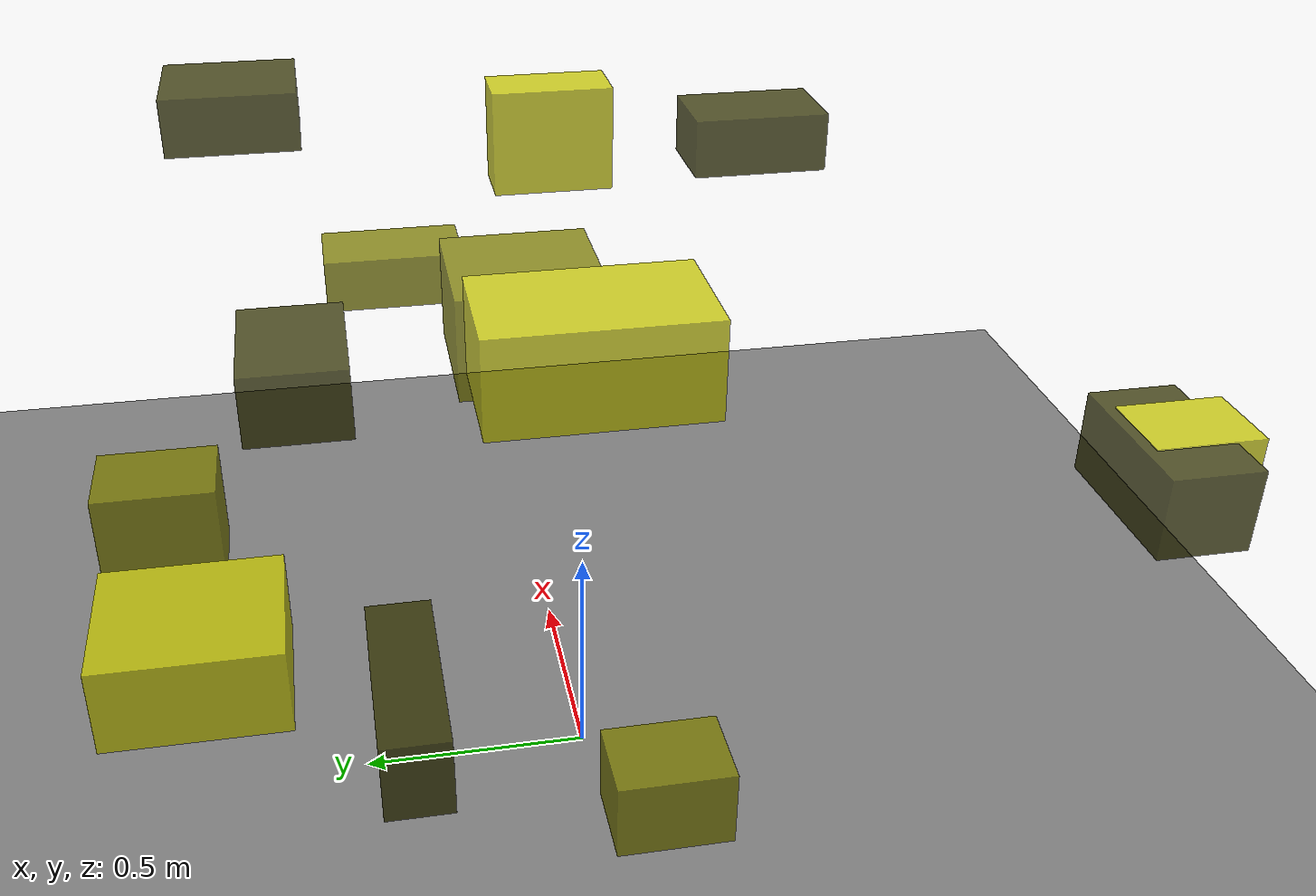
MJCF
<?xml version="1.0"?>
<mujoco model="obstacle_scene">
  <compiler angle="radian" coordinate="local"/>
  <option timestep="0.001" gravity="0 0 -9.81"/>

  <asset>
    <material name="obstacle_mat" rgba="0.8 0.8 0.0 0.8"/>
    <material name="ground_mat" rgba="0.5 0.5 0.5 1"/>
  </asset>

  <worldbody>
    <!-- Ground plane -->
    <geom name="ground" type="plane" size="3 3 0.1" material="ground_mat"/>

    <!-- Obstacles -->
    <body name="obstacle_0" pos="0.883034 0.680115 1.276553">
      <geom name="obs_0" type="box" size="0.137873 0.153983 0.067768" rgba="0.2 0.2 0.0 0.8"/>
    </body>
    <body name="obstacle_1" pos="0.047565 0.111605 1.089883">
      <geom name="obs_1" type="box" size="0.153407 0.149673 0.106645" rgba="0.5 0.5 0.0 0.8"/>
    </body>
    <body name="obstacle_2" pos="-0.783078 -0.846333 1.156790">
      <geom name="obs_2" type="box" size="0.070386 0.093866 0.049135" rgba="0.8 0.8 0.0 0.8"/>
    </body>
    <body name="obstacle_3" pos="0.385574 0.584086 0.820567">
      <geom name="obs_3" type="box" size="0.170899 0.120723 0.085301" rgba="0.2 0.2 0.0 0.8"/>
    </body>
    <body name="obstacle_4" pos="0.222258 0.895056 0.575644">
      <geom name="obs_4" type="box" size="0.099849 0.129835 0.114500" rgba="0.5 0.5 0.0 0.8"/>
    </body>
    <body name="obstacle_5" pos="-0.349998 0.795858 0.642597">
      <geom name="obs_5" type="box" size="0.155944 0.174087 0.087535" rgba="0.8 0.8 0.0 0.8"/>
    </body>
    <body name="obstacle_6" pos="0.630805 -0.512722 1.227666">
      <geom name="obs_6" type="box" size="0.099152 0.153724 0.066281" rgba="0.2 0.2 0.0 0.8"/>
    </body>
    <body name="obstacle_7" pos="0.880843 0.329553 0.839922">
      <geom name="obs_7" type="box" size="0.097428 0.169861 0.064435" rgba="0.5 0.5 0.0 0.8"/>
    </body>
    <body name="obstacle_8" pos="0.849041 -0.068881 1.179846">
      <geom name="obs_8" type="box" size="0.072611 0.143859 0.125350" rgba="0.8 0.8 0.0 0.8"/>
    </body>
    <body name="obstacle_9" pos="-0.798742 -0.810208 1.131612">
      <geom name="obs_9" type="box" size="0.140673 0.077313 0.072118" rgba="0.2 0.2 0.0 0.8"/>
    </body>
    <body name="obstacle_10" pos="-0.370491 -0.112635 0.176230">
      <geom name="obs_10" type="box" size="0.093873 0.124653 0.088793" rgba="0.5 0.5 0.0 0.8"/>
    </body>
    <body name="obstacle_11" pos="-0.428696 0.060391 1.244105">
      <geom name="obs_11" type="box" size="0.124276 0.203348 0.093249" rgba="0.8 0.8 0.0 0.8"/>
    </body>
    <body name="obstacle_12" pos="-0.536129 0.415481 0.608574">
      <geom name="obs_12" type="box" size="0.202151 0.062512 0.079787" rgba="0.2 0.2 0.0 0.8"/>
    </body>
  </worldbody>
</mujoco>
